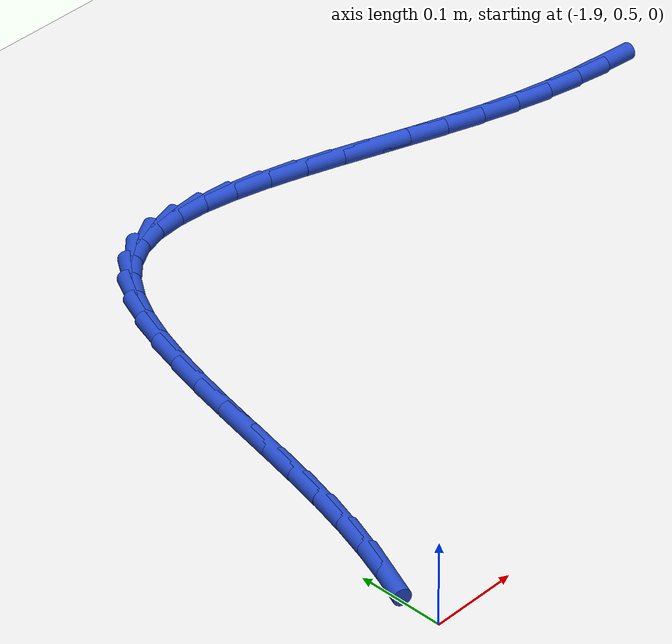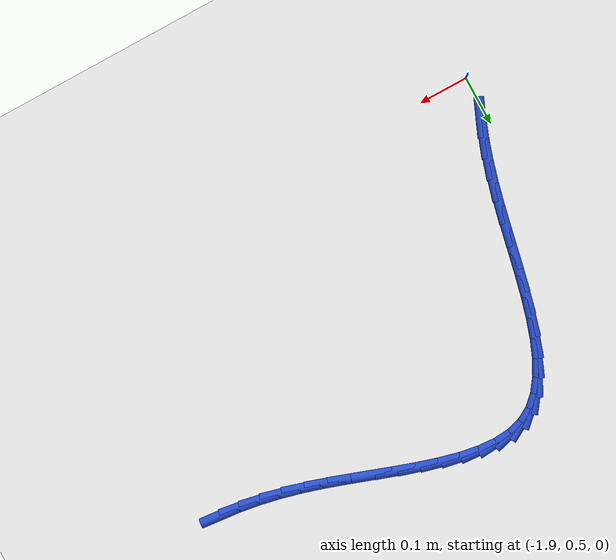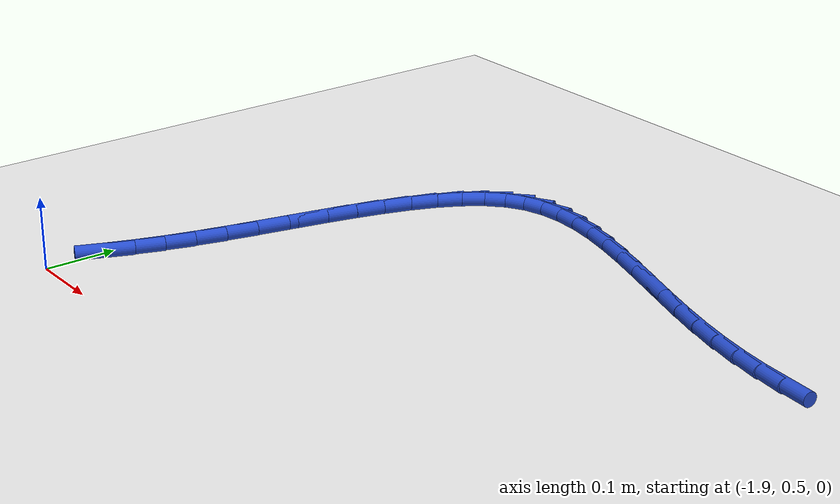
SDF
<sdf version="1.6">
 <world name="default">
  <model name="ground_plane">
   <static>1</static>
   <link name="link">
    <collision name="collision">
     <geometry><plane><normal>0 0 1</normal><size>100 100</size></plane></geometry>
     <surface><friction><ode><mu>100</mu><mu2>50</mu2></ode></friction></surface>
    </collision>
    <visual name="visual">
     <cast_shadows>0</cast_shadows>
     <geometry><plane><normal>0 0 1</normal><size>100 100</size></plane></geometry>
     <material>
      <script><uri>file://media/materials/scripts/gazebo.material</uri><name>Gazebo/WhiteGlow</name></script>
     </material>
    </visual>
   </link>
  </model>
  <model name="line">
   <link name="link_45">
    <pose>-1.0773122607340488 1.0128479626804148 0.01 0 1.57 -0.09898733409651839</pose>
    <collision name="collision">
     <geometry><cylinder><radius>0.01</radius><length>0.08</length></cylinder></geometry>
    </collision>
    <visual name="visual">
     <material>
      <script><name>Gazebo/Blue</name><uri>file://media/materials/scripts/gazebo.material</uri></script>
     </material>
     <geometry><cylinder><radius>0.01</radius><length>0.08</length></cylinder></geometry>
    </visual>
   </link>
   <link name="link_46">
    <pose>-1.1173191135965985 1.0168211198591361 0.01 0 1.57 -0.1540177070334375</pose>
    <collision name="collision">
     <geometry><cylinder><radius>0.01</radius><length>0.08</length></cylinder></geometry>
    </collision>
    <visual name="visual">
     <material>
      <script><name>Gazebo/Blue</name><uri>file://media/materials/scripts/gazebo.material</uri></script>
     </material>
     <geometry><cylinder><radius>0.01</radius><length>0.08</length></cylinder></geometry>
    </visual>
   </link>
   <link name="link_47">
    <pose>-1.1579455400604468 1.023128259462466 0.01 0 1.57 -0.20484689366956407</pose>
    <collision name="collision">
     <geometry><cylinder><radius>0.01</radius><length>0.08</length></cylinder></geometry>
    </collision>
    <visual name="visual">
     <material>
      <script><name>Gazebo/Blue</name><uri>file://media/materials/scripts/gazebo.material</uri></script>
     </material>
     <geometry><cylinder><radius>0.01</radius><length>0.08</length></cylinder></geometry>
    </visual>
   </link>
   <link name="link_48">
    <pose>-1.1992680735588324 1.0317134743494374 0.01 0 1.57 -0.25130912331340033</pose>
    <collision name="collision">
     <geometry><cylinder><radius>0.01</radius><length>0.08</length></cylinder></geometry>
    </collision>
    <visual name="visual">
     <material>
      <script><name>Gazebo/Blue</name><uri>file://media/materials/scripts/gazebo.material</uri></script>
     </material>
     <geometry><cylinder><radius>0.01</radius><length>0.08</length></cylinder></geometry>
    </visual>
   </link>
   <link name="link_49">
    <pose>-1.241363247524994 1.0425208573790812 0.01 0 1.57 -0.2925340425971711</pose>
    <collision name="collision">
     <geometry><cylinder><radius>0.01</radius><length>0.08</length></cylinder></geometry>
    </collision>
    <visual name="visual">
     <material>
      <script><name>Gazebo/Blue</name><uri>file://media/materials/scripts/gazebo.material</uri></script>
     </material>
     <geometry><cylinder><radius>0.01</radius><length>0.08</length></cylinder></geometry>
    </visual>
   </link>
   <link name="link_50">
    <pose>-1.2842753483489588 1.0554448913430603 0.01 0 1.57 -0.32141922913595883</pose>
    <collision name="collision">
     <geometry><cylinder><radius>0.01</radius><length>0.08</length></cylinder></geometry>
    </collision>
    <visual name="visual">
     <material>
      <script><name>Gazebo/Blue</name><uri>file://media/materials/scripts/gazebo.material</uri></script>
     </material>
     <geometry><cylinder><radius>0.01</radius><length>0.08</length></cylinder></geometry>
    </visual>
   </link>
   <link name="link_51">
    <pose>-1.327749878417648 1.0699203984549739 0.01 0 1.57 -0.3355626292041894</pose>
    <collision name="collision">
     <geometry><cylinder><radius>0.01</radius><length>0.08</length></cylinder></geometry>
    </collision>
    <visual name="visual">
     <material>
      <script><name>Gazebo/Blue</name><uri>file://media/materials/scripts/gazebo.material</uri></script>
     </material>
     <geometry><cylinder><radius>0.01</radius><length>0.08</length></cylinder></geometry>
    </visual>
   </link>
   <link name="link_52">
    <pose>-1.3713704661629464 1.0851331679314349 0.01 0 1.57 -0.3358798256639726</pose>
    <collision name="collision">
     <geometry><cylinder><radius>0.01</radius><length>0.08</length></cylinder></geometry>
    </collision>
    <visual name="visual">
     <material>
      <script><name>Gazebo/Blue</name><uri>file://media/materials/scripts/gazebo.material</uri></script>
     </material>
     <geometry><cylinder><radius>0.01</radius><length>0.08</length></cylinder></geometry>
    </visual>
   </link>
   <link name="link_53">
    <pose>-1.4147191429887989 1.1002665320610492 0.01 0 1.57 -0.32212376673585585</pose>
    <collision name="collision">
     <geometry><cylinder><radius>0.01</radius><length>0.08</length></cylinder></geometry>
    </collision>
    <visual name="visual">
     <material>
      <script><name>Gazebo/Blue</name><uri>file://media/materials/scripts/gazebo.material</uri></script>
     </material>
     <geometry><cylinder><radius>0.01</radius><length>0.08</length></cylinder></geometry>
    </visual>
   </link>
   <link name="link_54">
    <pose>-1.4573779402991522 1.1145038231324222 0.01 0 1.57 -0.29276484376699224</pose>
    <collision name="collision">
     <geometry><cylinder><radius>0.01</radius><length>0.08</length></cylinder></geometry>
    </collision>
    <visual name="visual">
     <material>
      <script><name>Gazebo/Blue</name><uri>file://media/materials/scripts/gazebo.material</uri></script>
     </material>
     <geometry><cylinder><radius>0.01</radius><length>0.08</length></cylinder></geometry>
    </visual>
   </link>
   <link name="link_55">
    <pose>-1.4989288894979538 1.1270283734341613 0.01 0 1.57 -0.24471666229600572</pose>
    <collision name="collision">
     <geometry><cylinder><radius>0.01</radius><length>0.08</length></cylinder></geometry>
    </collision>
    <visual name="visual">
     <material>
      <script><name>Gazebo/Blue</name><uri>file://media/materials/scripts/gazebo.material</uri></script>
     </material>
     <geometry><cylinder><radius>0.01</radius><length>0.08</length></cylinder></geometry>
    </visual>
   </link>
   <link name="link_56">
    <pose>-1.5389540219891487 1.1370235152548718 0.01 0 1.57 -0.1728591164609394</pose>
    <collision name="collision">
     <geometry><cylinder><radius>0.01</radius><length>0.08</length></cylinder></geometry>
    </collision>
    <visual name="visual">
     <material>
      <script><name>Gazebo/Blue</name><uri>file://media/materials/scripts/gazebo.material</uri></script>
     </material>
     <geometry><cylinder><radius>0.01</radius><length>0.08</length></cylinder></geometry>
    </visual>
   </link>
   <link name="link_57">
    <pose>-1.5770353691766839 1.1436725808831603 0.01 0 1.57 -0.06949457277430804</pose>
    <collision name="collision">
     <geometry><cylinder><radius>0.01</radius><length>0.08</length></cylinder></geometry>
    </collision>
    <visual name="visual">
     <material>
      <script><name>Gazebo/Blue</name><uri>file://media/materials/scripts/gazebo.material</uri></script>
     </material>
     <geometry><cylinder><radius>0.01</radius><length>0.08</length></cylinder></geometry>
    </visual>
   </link>
   <link name="link_58">
    <pose>-1.6127549624645054 1.1461589026076324 0.01 0 1.57 0.07554206096373504</pose>
    <collision name="collision">
     <geometry><cylinder><radius>0.01</radius><length>0.08</length></cylinder></geometry>
    </collision>
    <visual name="visual">
     <material>
      <script><name>Gazebo/Blue</name><uri>file://media/materials/scripts/gazebo.material</uri></script>
     </material>
     <geometry><cylinder><radius>0.01</radius><length>0.08</length></cylinder></geometry>
    </visual>
   </link>
   <link name="link_59">
    <pose>-1.6456948332565593 1.1436658127168946 0.01 0 1.57 0.27180354752542457</pose>
    <collision name="collision">
     <geometry><cylinder><radius>0.01</radius><length>0.08</length></cylinder></geometry>
    </collision>
    <visual name="visual">
     <material>
      <script><name>Gazebo/Blue</name><uri>file://media/materials/scripts/gazebo.material</uri></script>
     </material>
     <geometry><cylinder><radius>0.01</radius><length>0.08</length></cylinder></geometry>
    </visual>
   </link>
   <link name="link_60">
    <pose>-1.6754370129567935 1.1353766434995536 0.01 0 1.57 0.515961949990352</pose>
    <collision name="collision">
     <geometry><cylinder><radius>0.01</radius><length>0.08</length></cylinder></geometry>
    </collision>
    <visual name="visual">
     <material>
      <script><name>Gazebo/Blue</name><uri>file://media/materials/scripts/gazebo.material</uri></script>
     </material>
     <geometry><cylinder><radius>0.01</radius><length>0.08</length></cylinder></geometry>
    </visual>
   </link>
   <link name="link_61">
    <pose>-1.7015971448208291 1.1205382939595308 0.01 0 1.57 0.7538740013303692</pose>
    <collision name="collision">
     <geometry><cylinder><radius>0.01</radius><length>0.08</length></cylinder></geometry>
    </collision>
    <visual name="visual">
     <material>
      <script><name>Gazebo/Blue</name><uri>file://media/materials/scripts/gazebo.material</uri></script>
     </material>
     <geometry><cylinder><radius>0.01</radius><length>0.08</length></cylinder></geometry>
    </visual>
   </link>
   <link name="link_62">
    <pose>-1.7242515883038851 1.0992689693228221 0.01 0 1.57 0.9429869830477323</pose>
    <collision name="collision">
     <geometry><cylinder><radius>0.01</radius><length>0.08</length></cylinder></geometry>
    </collision>
    <visual name="visual">
     <material>
      <script><name>Gazebo/Blue</name><uri>file://media/materials/scripts/gazebo.material</uri></script>
     </material>
     <geometry><cylinder><radius>0.01</radius><length>0.08</length></cylinder></geometry>
    </visual>
   </link>
   <link name="link_63">
    <pose>-1.7438109401475401 1.072318984186676 0.01 0 1.57 1.083602102859504</pose>
    <collision name="collision">
     <geometry><cylinder><radius>0.01</radius><length>0.08</length></cylinder></geometry>
    </collision>
    <visual name="visual">
     <material>
      <script><name>Gazebo/Blue</name><uri>file://media/materials/scripts/gazebo.material</uri></script>
     </material>
     <geometry><cylinder><radius>0.01</radius><length>0.08</length></cylinder></geometry>
    </visual>
   </link>
   <link name="link_64">
    <pose>-1.7606932936030006 1.0404528305432124 0.01 0 1.57 1.1851232731153538</pose>
    <collision name="collision">
     <geometry><cylinder><radius>0.01</radius><length>0.08</length></cylinder></geometry>
    </collision>
    <visual name="visual">
     <material>
      <script><name>Gazebo/Blue</name><uri>file://media/materials/scripts/gazebo.material</uri></script>
     </material>
     <geometry><cylinder><radius>0.01</radius><length>0.08</length></cylinder></geometry>
    </visual>
   </link>
   <link name="link_65">
    <pose>-1.775316741921475 1.0044350003845504 0.01 0 1.57 1.2571152468708502</pose>
    <collision name="collision">
     <geometry><cylinder><radius>0.01</radius><length>0.08</length></cylinder></geometry>
    </collision>
    <visual name="visual">
     <material>
      <script><name>Gazebo/Blue</name><uri>file://media/materials/scripts/gazebo.material</uri></script>
     </material>
     <geometry><cylinder><radius>0.01</radius><length>0.08</length></cylinder></geometry>
    </visual>
   </link>
   <link name="link_66">
    <pose>-1.7880993783541699 0.9650299857028083 0.01 0 1.57 1.3068086994045838</pose>
    <collision name="collision">
     <geometry><cylinder><radius>0.01</radius><length>0.08</length></cylinder></geometry>
    </collision>
    <visual name="visual">
     <material>
      <script><name>Gazebo/Blue</name><uri>file://media/materials/scripts/gazebo.material</uri></script>
     </material>
     <geometry><cylinder><radius>0.01</radius><length>0.08</length></cylinder></geometry>
    </visual>
   </link>
   <link name="link_67">
    <pose>-1.7994592961522937 0.9230022784901067 0.01 0 1.57 1.3390753718841701</pose>
    <collision name="collision">
     <geometry><cylinder><radius>0.01</radius><length>0.08</length></cylinder></geometry>
    </collision>
    <visual name="visual">
     <material>
      <script><name>Gazebo/Blue</name><uri>file://media/materials/scripts/gazebo.material</uri></script>
     </material>
     <geometry><cylinder><radius>0.01</radius><length>0.08</length></cylinder></geometry>
    </visual>
   </link>
   <link name="link_68">
    <pose>-1.8098145885670545 0.8791163707385647 0.01 0 1.57 1.3569355693815515</pose>
    <collision name="collision">
     <geometry><cylinder><radius>0.01</radius><length>0.08</length></cylinder></geometry>
    </collision>
    <visual name="visual">
     <material>
      <script><name>Gazebo/Blue</name><uri>file://media/materials/scripts/gazebo.material</uri></script>
     </material>
     <geometry><cylinder><radius>0.01</radius><length>0.08</length></cylinder></geometry>
    </visual>
   </link>
   <link name="link_69">
    <pose>-1.819583348849659 0.8341367544403004 0.01 0 1.57 1.3619981824513048</pose>
    <collision name="collision">
     <geometry><cylinder><radius>0.01</radius><length>0.08</length></cylinder></geometry>
    </collision>
    <visual name="visual">
     <material>
      <script><name>Gazebo/Blue</name><uri>file://media/materials/scripts/gazebo.material</uri></script>
     </material>
     <geometry><cylinder><radius>0.01</radius><length>0.08</length></cylinder></geometry>
    </visual>
   </link>
   <link name="link_70">
    <pose>-1.8291836702513156 0.7888279215874344 0.01 0 1.57 1.35471810084058</pose>
    <collision name="collision">
     <geometry><cylinder><radius>0.01</radius><length>0.08</length></cylinder></geometry>
    </collision>
    <visual name="visual">
     <material>
      <script><name>Gazebo/Blue</name><uri>file://media/materials/scripts/gazebo.material</uri></script>
     </material>
     <geometry><cylinder><radius>0.01</radius><length>0.08</length></cylinder></geometry>
    </visual>
   </link>
   <link name="link_71">
    <pose>-1.8390336460232308 0.7439543641720847 0.01 0 1.57 1.3344717938092594</pose>
    <collision name="collision">
     <geometry><cylinder><radius>0.01</radius><length>0.08</length></cylinder></geometry>
    </collision>
    <visual name="visual">
     <material>
      <script><name>Gazebo/Blue</name><uri>file://media/materials/scripts/gazebo.material</uri></script>
     </material>
     <geometry><cylinder><radius>0.01</radius><length>0.08</length></cylinder></geometry>
    </visual>
   </link>
   <link name="link_72">
    <pose>-1.8495513694166137 0.700280574186372 0.01 0 1.57 1.3003523546444689</pose>
    <collision name="collision">
     <geometry><cylinder><radius>0.01</radius><length>0.08</length></cylinder></geometry>
    </collision>
    <visual name="visual">
     <material>
      <script><name>Gazebo/Blue</name><uri>file://media/materials/scripts/gazebo.material</uri></script>
     </material>
     <geometry><cylinder><radius>0.01</radius><length>0.08</length></cylinder></geometry>
    </visual>
   </link>
   <link name="link_73">
    <pose>-1.861131903212898 0.6585092076422082 0.01 0 1.57 1.259106848956085</pose>
    <collision name="collision">
     <geometry><cylinder><radius>0.01</radius><length>0.08</length></cylinder></geometry>
    </collision>
    <visual name="visual">
     <material>
      <script><name>Gazebo/Blue</name><uri>file://media/materials/scripts/gazebo.material</uri></script>
     </material>
     <geometry><cylinder><radius>0.01</radius><length>0.08</length></cylinder></geometry>
    </visual>
   </link>
   <link name="link_74">
    <pose>-1.873945456661369 0.6187391969322819 0.01 0 1.57 1.215819242705524</pose>
    <collision name="collision">
     <geometry><cylinder><radius>0.01</radius><length>0.08</length></cylinder></geometry>
    </collision>
    <visual name="visual">
     <material>
      <script><name>Gazebo/Blue</name><uri>file://media/materials/scripts/gazebo.material</uri></script>
     </material>
     <geometry><cylinder><radius>0.01</radius><length>0.08</length></cylinder></geometry>
    </visual>
   </link>
   <link name="link_75">
    <pose>-1.8880352356246086 0.5807284749393391 0.01 0 1.57 1.1713324374699692</pose>
    <collision name="collision">
     <geometry><cylinder><radius>0.01</radius><length>0.08</length></cylinder></geometry>
    </collision>
    <visual name="visual">
     <material>
      <script><name>Gazebo/Blue</name><uri>file://media/materials/scripts/gazebo.material</uri></script>
     </material>
     <geometry><cylinder><radius>0.01</radius><length>0.08</length></cylinder></geometry>
    </visual>
   </link>
  </model>
 </world>
</sdf>
